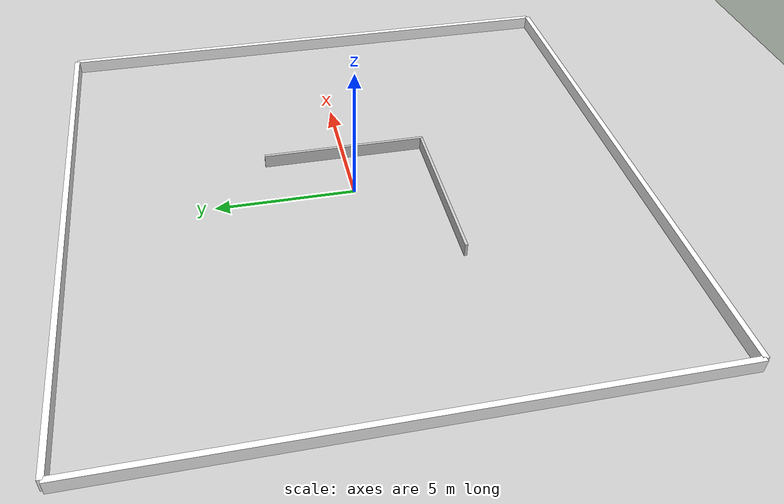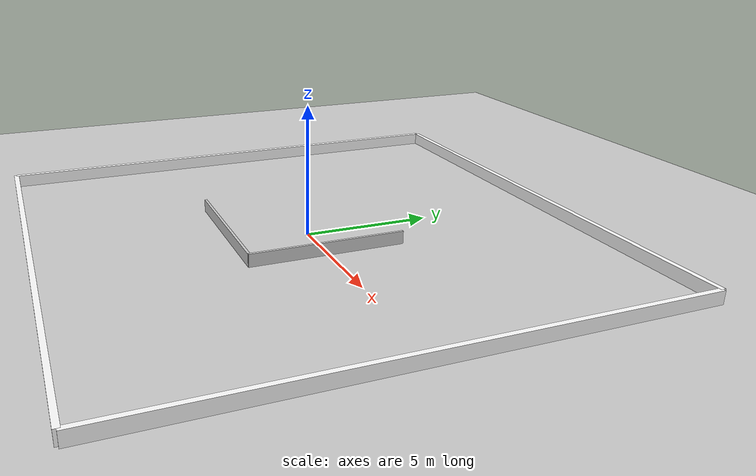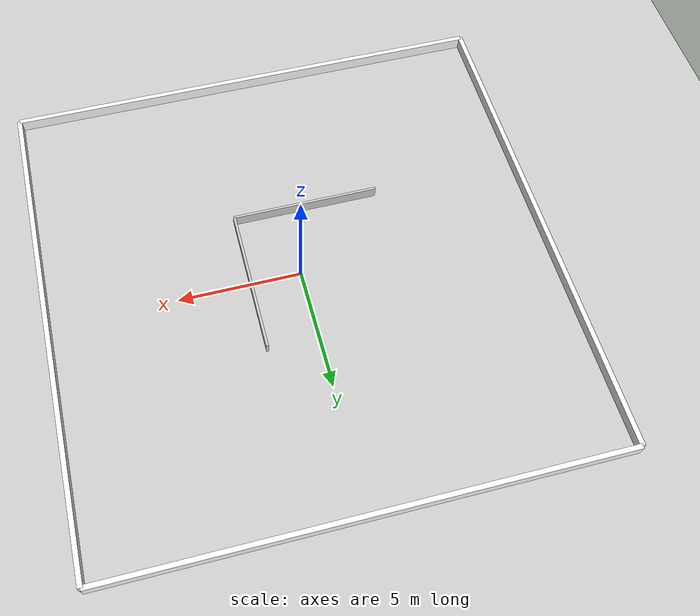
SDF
<sdf version="1.7">
 <world name="room20x20">
  <gravity>0 0 -9.81</gravity>
  <light name="sun" type="directional">
   <pose>0 0 10 0 -0 0</pose>
   <diffuse>0.8 0.8 0.8 1</diffuse>
   <specular>0.2 0.2 0.2 1</specular>
   <attenuation>
    <range>1000</range>
    <constant>0.9</constant>
    <linear>0.01</linear>
    <quadratic>0.001</quadratic>
   </attenuation>
   <direction>-0.5 0.1 -0.9</direction>
   <spot><inner_angle>0</inner_angle><outer_angle>0</outer_angle><falloff>0</falloff></spot>
  </light>
  <model name="ground_plane">
   <static>1</static>
   <link name="link">
    <collision name="collision">
     <geometry><plane><normal>0 0 1</normal><size>100 100</size></plane></geometry>
    </collision>
    <visual name="visual">
     <cast_shadows>0</cast_shadows>
     <geometry><plane><normal>0 0 1</normal><size>100 100</size></plane></geometry>
     <material>
      <script><uri>file://media/materials/scripts/gazebo.material</uri><name>Gazebo/Grey</name></script>
     </material>
    </visual>
   </link>
  </model>
  <model name="outer_walls">
   <static>1</static>
   <link name="walls">
    <collision name="c1">
     <geometry><box><size>20.2 0.2 0.5</size></box></geometry>
     <pose>0 10.1 0.25 0 -0 0</pose>
    </collision>
    <visual name="v1">
     <geometry><box><size>20.2 0.2 0.5</size></box></geometry>
     <material><ambient>1 1 1 1</ambient><diffuse>1 1 1 1</diffuse></material>
     <pose>0 10.1 0.25 0 -0 0</pose>
    </visual>
    <collision name="c2">
     <geometry><box><size>20.2 0.2 0.5</size></box></geometry>
     <pose>0 -10.1 0.25 0 -0 0</pose>
    </collision>
    <visual name="v2">
     <geometry><box><size>20.2 0.2 0.5</size></box></geometry>
     <material><ambient>1 1 1 1</ambient><diffuse>1 1 1 1</diffuse></material>
     <pose>0 -10.1 0.25 0 -0 0</pose>
    </visual>
    <collision name="c3">
     <geometry><box><size>0.2 20.2 0.5</size></box></geometry>
     <pose>10.1 0 0.25 0 -0 0</pose>
    </collision>
    <visual name="v3">
     <geometry><box><size>0.2 20.2 0.5</size></box></geometry>
     <material><ambient>1 1 1 1</ambient><diffuse>1 1 1 1</diffuse></material>
     <pose>10.1 0 0.25 0 -0 0</pose>
    </visual>
    <collision name="c4">
     <geometry><box><size>0.2 20.2 0.5</size></box></geometry>
     <pose>-10.1 0 0.25 0 -0 0</pose>
    </collision>
    <visual name="v4">
     <geometry><box><size>0.2 20.2 0.5</size></box></geometry>
     <material><ambient>1 1 1 1</ambient><diffuse>1 1 1 1</diffuse></material>
     <pose>-10.1 0 0.25 0 -0 0</pose>
    </visual>
   </link>
  </model>
  <model name="inner_wall_h">
   <pose>-2.93594 -4.98381 0 0 -0 0</pose>
   <static>1</static>
   <link name="l">
    <collision name="c"><geometry><box><size>6 0.1 0.5</size></box></geometry></collision>
    <visual name="v">
     <geometry><box><size>6 0.1 0.5</size></box></geometry>
     <material><ambient>0.8 0.8 0.8 1</ambient></material>
    </visual>
    <pose>2 2 0.25 0 -0 0</pose>
   </link>
  </model>
  <model name="inner_wall_v">
   <pose>0.05861 -0.015273 0 0 -0 0</pose>
   <static>1</static>
   <link name="l">
    <collision name="c"><geometry><box><size>0.1 6 0.5</size></box></geometry></collision>
    <visual name="v">
     <geometry><box><size>0.1 6 0.5</size></box></geometry>
     <material><ambient>0.8 0.8 0.8 1</ambient></material>
    </visual>
    <pose>2 0 0.25 0 -0 0</pose>
   </link>
  </model>
  <magnetic_field>6e-06 2.3e-05 -4.2e-05</magnetic_field>
  <atmosphere type="adiabatic"/>
  <physics type="ode">
   <max_step_size>0.001</max_step_size>
   <real_time_factor>1</real_time_factor>
   <real_time_update_rate>1000</real_time_update_rate>
  </physics>
  <scene><ambient>0.4 0.4 0.4 1</ambient><background>0.7 0.7 0.7 1</background><shadows>1</shadows></scene>
  <audio><device>default</device></audio>
  <spherical_coordinates>
   <surface_model>EARTH_WGS84</surface_model>
   <latitude_deg>0</latitude_deg>
   <longitude_deg>0</longitude_deg>
   <elevation>0</elevation>
   <heading_deg>0</heading_deg>
  </spherical_coordinates>
 </world>
</sdf>
